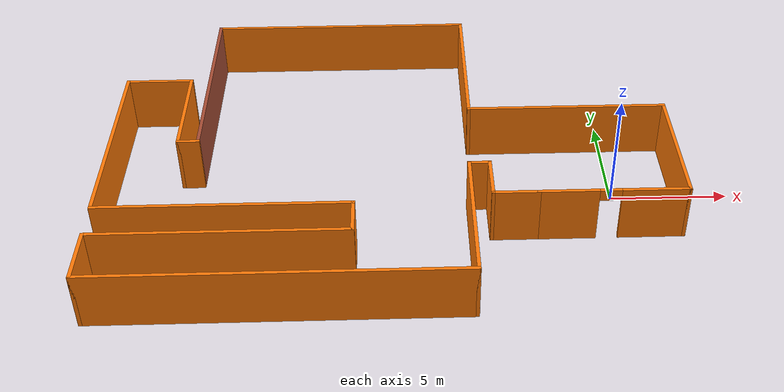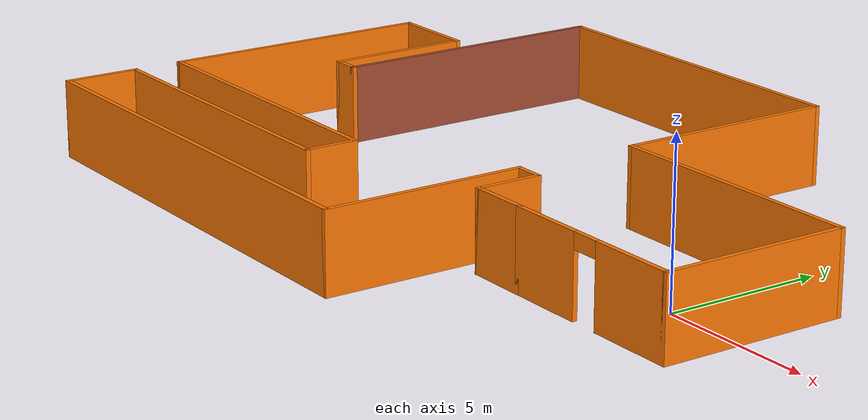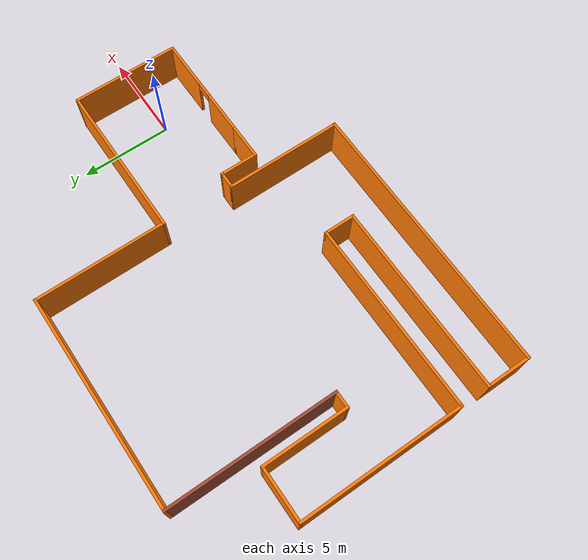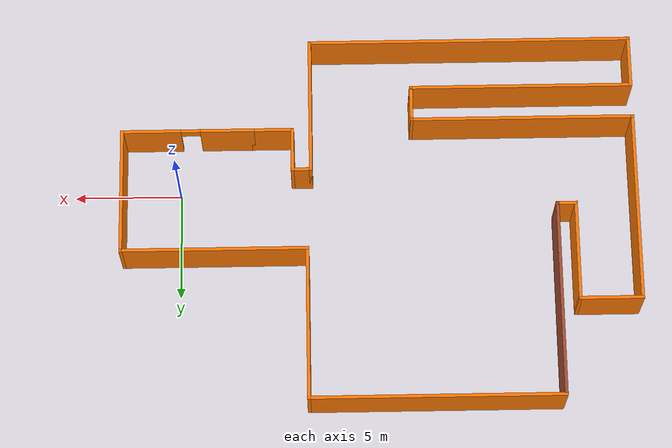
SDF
<?xml version='1.0'?>
<sdf version='1.7'>
  <model name='Building'>
    <pose>-9.3 1.86 0 0 -0 0</pose>
    <link name='Wall_0'>
      <pose>8.9 -4.273 0 0 -0 0</pose>
      <visual name='Wall_0_Visual_0'>
        <pose>-1.8625 0 1.25 0 -0 0</pose>
        <geometry>
          <box>
            <size>2.525 0.15 2.5</size>
          </box>
        </geometry>
        <material>
          <script>
            <uri>file://media/materials/scripts/gazebo.material</uri>
            <name>Gazebo/Grey</name>
          </script>
          <ambient>0.996078 0.47451 0.0196078 1</ambient>
        </material>
        <meta>
          <layer>0</layer>
        </meta>
      </visual>
      <collision name='Wall_0_Collision_0'>
        <geometry>
          <box>
            <size>2.525 0.15 2.5</size>
          </box>
        </geometry>
        <pose>-1.8625 0 1.25 0 -0 0</pose>
      </collision>
      <visual name='Wall_0_Visual_1'>
        <pose>1.7125 0 1.25 0 -0 0</pose>
        <geometry>
          <box>
            <size>2.825 0.15 2.5</size>
          </box>
        </geometry>
        <material>
          <script>
            <uri>file://media/materials/scripts/gazebo.material</uri>
            <name>Gazebo/Grey</name>
          </script>
          <ambient>0.996078 0.47451 0.0196078 1</ambient>
        </material>
        <meta>
          <layer>0</layer>
        </meta>
      </visual>
      <collision name='Wall_0_Collision_1'>
        <geometry>
          <box>
            <size>2.825 0.15 2.5</size>
          </box>
        </geometry>
        <pose>1.7125 0 1.25 0 -0 0</pose>
      </collision>
      <visual name='Wall_0_Visual_2'>
        <pose>-0.15 0 2.25 0 -0 0</pose>
        <geometry>
          <box>
            <size>0.9 0.15 0.5</size>
          </box>
        </geometry>
        <material>
          <script>
            <uri>file://media/materials/scripts/gazebo.material</uri>
            <name>Gazebo/Grey</name>
          </script>
          <ambient>0.996078 0.47451 0.0196078 1</ambient>
        </material>
        <meta>
          <layer>0</layer>
        </meta>
      </visual>
      <collision name='Wall_0_Collision_2'>
        <geometry>
          <box>
            <size>0.9 0.15 0.5</size>
          </box>
        </geometry>
        <pose>-0.15 0 2.25 0 -0 0</pose>
      </collision>
    </link>
    <link name='Wall_12'>
      <collision name='Wall_12_Collision'>
        <geometry>
          <box>
            <size>9 0.15 2.5</size>
          </box>
        </geometry>
        <pose>0 0 1.25 0 -0 0</pose>
      </collision>
      <visual name='Wall_12_Visual'>
        <pose>0 0 1.25 0 -0 0</pose>
        <geometry>
          <box>
            <size>9 0.15 2.5</size>
          </box>
        </geometry>
        <material>
          <script>
            <uri>file://media/materials/scripts/gazebo.material</uri>
            <name>Gazebo/Grey</name>
          </script>
          <ambient>0.996078 0.47451 0.0196078 1</ambient>
        </material>
        <meta>
          <layer>0</layer>
        </meta>
      </visual>
      <pose>-11.95 -0.275 0 0 -0 -1.5708</pose>
    </link>
    <link name='Wall_13'>
      <collision name='Wall_13_Collision'>
        <geometry>
          <box>
            <size>10.5 0.15 2.5</size>
          </box>
        </geometry>
        <pose>0 0 1.25 0 -0 0</pose>
      </collision>
      <visual name='Wall_13_Visual'>
        <pose>0 0 1.25 0 -0 0</pose>
        <geometry>
          <box>
            <size>10.5 0.15 2.5</size>
          </box>
        </geometry>
        <material>
          <script>
            <uri>file://media/materials/scripts/gazebo.material</uri>
            <name>Gazebo/Grey</name>
          </script>
          <ambient>0.996078 0.47451 0.0196078 1</ambient>
        </material>
        <meta>
          <layer>0</layer>
        </meta>
      </visual>
      <pose>-6.775 -4.7 0 0 -0 0</pose>
    </link>
    <link name='Wall_14'>
      <collision name='Wall_14_Collision'>
        <geometry>
          <box>
            <size>1.75 0.15 2.5</size>
          </box>
        </geometry>
        <pose>0 0 1.25 0 -0 0</pose>
      </collision>
      <visual name='Wall_14_Visual'>
        <pose>0 0 1.25 0 -0 0</pose>
        <geometry>
          <box>
            <size>1.75 0.15 2.5</size>
          </box>
        </geometry>
        <material>
          <script>
            <uri>file://media/materials/scripts/gazebo.material</uri>
            <name>Gazebo/Grey</name>
          </script>
          <ambient>0.996078 0.47451 0.0196078 1</ambient>
        </material>
        <meta>
          <layer>0</layer>
        </meta>
      </visual>
      <pose>-1.6 -5.5 0 0 -0 -1.5708</pose>
    </link>
    <link name='Wall_15'>
      <collision name='Wall_15_Collision'>
        <geometry>
          <box>
            <size>10.5 0.15 2.5</size>
          </box>
        </geometry>
        <pose>0 0 1.25 0 -0 0</pose>
      </collision>
      <visual name='Wall_15_Visual'>
        <pose>0 0 1.25 0 -0 0</pose>
        <geometry>
          <box>
            <size>10.5 0.15 2.5</size>
          </box>
        </geometry>
        <material>
          <script>
            <uri>file://media/materials/scripts/gazebo.material</uri>
            <name>Gazebo/Grey</name>
          </script>
          <ambient>0.996078 0.47451 0.0196078 1</ambient>
        </material>
        <meta>
          <layer>0</layer>
        </meta>
      </visual>
      <pose>-6.775 -6.3 0 0 -0 3.14159</pose>
    </link>
    <link name='Wall_16'>
      <collision name='Wall_16_Collision'>
        <geometry>
          <box>
            <size>2.5 0.15 2.5</size>
          </box>
        </geometry>
        <pose>0 0 1.25 0 -0 0</pose>
      </collision>
      <visual name='Wall_16_Visual'>
        <pose>0 0 1.25 0 -0 0</pose>
        <geometry>
          <box>
            <size>2.5 0.15 2.5</size>
          </box>
        </geometry>
        <material>
          <script>
            <uri>file://media/materials/scripts/gazebo.material</uri>
            <name>Gazebo/Grey</name>
          </script>
          <ambient>0.996078 0.47451 0.0196078 1</ambient>
        </material>
        <meta>
          <layer>0</layer>
        </meta>
      </visual>
      <pose>-11.95 -7.475 0 0 -0 -1.5708</pose>
    </link>
    <link name='Wall_17'>
      <collision name='Wall_17_Collision'>
        <geometry>
          <box>
            <size>15.25 0.15 2.5</size>
          </box>
        </geometry>
        <pose>0 0 1.25 0 -0 0</pose>
      </collision>
      <visual name='Wall_17_Visual'>
        <pose>0 0 1.25 0 -0 0</pose>
        <geometry>
          <box>
            <size>15.25 0.15 2.5</size>
          </box>
        </geometry>
        <material>
          <script>
            <uri>file://media/materials/scripts/gazebo.material</uri>
            <name>Gazebo/Grey</name>
          </script>
          <ambient>0.996078 0.47451 0.0196078 1</ambient>
        </material>
        <meta>
          <layer>0</layer>
        </meta>
      </visual>
      <pose>-4.4 -8.65 0 0 -0 0</pose>
    </link>
    <link name='Wall_18'>
      <collision name='Wall_18_Collision'>
        <geometry>
          <box>
            <size>6.5 0.15 2.5</size>
          </box>
        </geometry>
        <pose>0 0 1.25 0 -0 0</pose>
      </collision>
      <visual name='Wall_18_Visual'>
        <pose>0 0 1.25 0 -0 0</pose>
        <geometry>
          <box>
            <size>6.5 0.15 2.5</size>
          </box>
        </geometry>
        <material>
          <script>
            <uri>file://media/materials/scripts/gazebo.material</uri>
            <name>Gazebo/Grey</name>
          </script>
          <ambient>0.996078 0.47451 0.0196078 1</ambient>
        </material>
        <meta>
          <layer>0</layer>
        </meta>
      </visual>
      <pose>3.15 -5.475 0 0 -0 1.5708</pose>
    </link>
    <link name='Wall_19'>
      <collision name='Wall_19_Collision'>
        <geometry>
          <box>
            <size>1 0.15 2.5</size>
          </box>
        </geometry>
        <pose>0 0 1.25 0 -0 0</pose>
      </collision>
      <visual name='Wall_19_Visual'>
        <pose>0 0 1.25 0 -0 0</pose>
        <geometry>
          <box>
            <size>1 0.15 2.5</size>
          </box>
        </geometry>
        <material>
          <script>
            <uri>file://media/materials/scripts/gazebo.material</uri>
            <name>Gazebo/Grey</name>
          </script>
          <ambient>0.996078 0.47451 0.0196078 1</ambient>
        </material>
        <meta>
          <layer>0</layer>
        </meta>
      </visual>
      <pose>3.575 -2.3 0 0 -0 0</pose>
    </link>
    <link name='Wall_2'>
      <collision name='Wall_2_Collision'>
        <geometry>
          <box>
            <size>5.973 0.15 2.5</size>
          </box>
        </geometry>
        <pose>0 0 1.25 0 -0 0</pose>
      </collision>
      <visual name='Wall_2_Visual'>
        <pose>0 0 1.25 0 -0 0</pose>
        <geometry>
          <box>
            <size>5.973 0.15 2.5</size>
          </box>
        </geometry>
        <material>
          <script>
            <uri>file://media/materials/scripts/gazebo.material</uri>
            <name>Gazebo/Grey</name>
          </script>
          <ambient>0.996078 0.47451 0.0196078 1</ambient>
        </material>
        <meta>
          <layer>0</layer>
        </meta>
      </visual>
      <pose>11.95 -1.3615 0 0 -0 1.5708</pose>
    </link>
    <link name='Wall_20'>
      <collision name='Wall_20_Collision'>
        <geometry>
          <box>
            <size>2.123 0.15 2.5</size>
          </box>
        </geometry>
        <pose>0 0 1.25 0 -0 0</pose>
      </collision>
      <visual name='Wall_20_Visual'>
        <pose>0 0 1.25 0 -0 0</pose>
        <geometry>
          <box>
            <size>2.123 0.15 2.5</size>
          </box>
        </geometry>
        <material>
          <script>
            <uri>file://media/materials/scripts/gazebo.material</uri>
            <name>Gazebo/Grey</name>
          </script>
          <ambient>0.996078 0.47451 0.0196078 1</ambient>
        </material>
        <meta>
          <layer>0</layer>
        </meta>
      </visual>
      <pose>4 -3.2865 0 0 -0 -1.5708</pose>
    </link>
    <link name='Wall_21'>
      <collision name='Wall_21_Collision'>
        <geometry>
          <box>
            <size>2 0.15 2.5</size>
          </box>
        </geometry>
        <pose>0 0 1.25 0 -0 0</pose>
      </collision>
      <visual name='Wall_21_Visual'>
        <pose>0 0 1.25 0 -0 0</pose>
        <geometry>
          <box>
            <size>2 0.15 2.5</size>
          </box>
        </geometry>
        <material>
          <script>
            <uri>file://media/materials/scripts/gazebo.material</uri>
            <name>Gazebo/Grey</name>
          </script>
          <ambient>0.996078 0.47451 0.0196078 1</ambient>
        </material>
        <meta>
          <layer>0</layer>
        </meta>
      </visual>
      <pose>4.925 -4.273 0 0 -0 0</pose>
    </link>
    <link name='Wall_3'>
      <collision name='Wall_3_Collision'>
        <geometry>
          <box>
            <size>8.75 0.15 2.5</size>
          </box>
        </geometry>
        <pose>0 0 1.25 0 -0 0</pose>
      </collision>
      <visual name='Wall_3_Visual'>
        <pose>0 0 1.25 0 -0 0</pose>
        <geometry>
          <box>
            <size>8.75 0.15 2.5</size>
          </box>
        </geometry>
        <material>
          <script>
            <uri>file://media/materials/scripts/gazebo.material</uri>
            <name>Gazebo/Grey</name>
          </script>
          <ambient>0.996078 0.47451 0.0196078 1</ambient>
        </material>
        <meta>
          <layer>0</layer>
        </meta>
      </visual>
      <pose>7.65 1.55 0 0 -0 3.14159</pose>
    </link>
    <link name='Wall_4'>
      <collision name='Wall_4_Collision'>
        <geometry>
          <box>
            <size>7.25 0.15 2.5</size>
          </box>
        </geometry>
        <pose>0 0 1.25 0 -0 0</pose>
      </collision>
      <visual name='Wall_4_Visual'>
        <pose>0 0 1.25 0 -0 0</pose>
        <geometry>
          <box>
            <size>7.25 0.15 2.5</size>
          </box>
        </geometry>
        <material>
          <script>
            <uri>file://media/materials/scripts/gazebo.material</uri>
            <name>Gazebo/Grey</name>
          </script>
          <ambient>0.996078 0.47451 0.0196078 1</ambient>
        </material>
        <meta>
          <layer>0</layer>
        </meta>
      </visual>
      <pose>3.35 5.1 0 0 -0 1.5708</pose>
    </link>
    <link name='Wall_5'>
      <collision name='Wall_5_Collision'>
        <geometry>
          <box>
            <size>11.75 0.15 2.5</size>
          </box>
        </geometry>
        <pose>0 0 1.25 0 -0 0</pose>
      </collision>
      <visual name='Wall_5_Visual'>
        <pose>0 0 1.25 0 -0 0</pose>
        <geometry>
          <box>
            <size>11.75 0.15 2.5</size>
          </box>
        </geometry>
        <material>
          <script>
            <uri>file://media/materials/scripts/gazebo.material</uri>
            <name>Gazebo/Grey</name>
          </script>
          <ambient>0.996078 0.47451 0.0196078 1</ambient>
        </material>
        <meta>
          <layer>0</layer>
        </meta>
      </visual>
      <pose>-2.45 8.65 0 0 -0 3.14159</pose>
    </link>
    <link name='Wall_6'>
      <collision name='Wall_6_Collision'>
        <geometry>
          <box>
            <size>9.25 0.15 2.5</size>
          </box>
        </geometry>
        <pose>0 0 1.25 0 -0 0</pose>
      </collision>
      <visual name='Wall_6_Visual'>
        <pose>0 0 1.25 0 -0 0</pose>
        <geometry>
          <box>
            <size>9.25 0.15 2.5</size>
          </box>
        </geometry>
        <material>
          <script>
            <uri>file://media/materials/scripts/gazebo.material</uri>
            <name>Gazebo/Bricks</name>
          </script>
          <ambient>0.996078 0.47451 0.0196078 1</ambient>
        </material>
        <meta>
          <layer>0</layer>
        </meta>
      </visual>
      <pose>-8.25 4.1 0 0 -0 -1.5708</pose>
    </link>
    <link name='Wall_7'>
      <collision name='Wall_7_Collision'>
        <geometry>
          <box>
            <size>1 0.15 2.5</size>
          </box>
        </geometry>
        <pose>0 0 1.25 0 -0 0</pose>
      </collision>
      <visual name='Wall_7_Visual'>
        <pose>0 0 1.25 0 -0 0</pose>
        <geometry>
          <box>
            <size>1 0.15 2.5</size>
          </box>
        </geometry>
        <material>
          <script>
            <uri>file://media/materials/scripts/gazebo.material</uri>
            <name>Gazebo/Grey</name>
          </script>
          <ambient>0.996078 0.47451 0.0196078 1</ambient>
        </material>
        <meta>
          <layer>0</layer>
        </meta>
      </visual>
      <pose>-8.675 -0.45 0 0 -0 3.14159</pose>
    </link>
    <link name='Wall_8'>
      <collision name='Wall_8_Collision'>
        <geometry>
          <box>
            <size>4.75 0.15 2.5</size>
          </box>
        </geometry>
        <pose>0 0 1.25 0 -0 0</pose>
      </collision>
      <visual name='Wall_8_Visual'>
        <pose>0 0 1.25 0 -0 0</pose>
        <geometry>
          <box>
            <size>4.75 0.15 2.5</size>
          </box>
        </geometry>
        <material>
          <script>
            <uri>file://media/materials/scripts/gazebo.material</uri>
            <name>Gazebo/Grey</name>
          </script>
          <ambient>0.996078 0.47451 0.0196078 1</ambient>
        </material>
        <meta>
          <layer>0</layer>
        </meta>
      </visual>
      <pose>-9.1 1.85 0 0 -0 1.5708</pose>
    </link>
    <link name='Wall_9'>
      <collision name='Wall_9_Collision'>
        <geometry>
          <box>
            <size>3 0.15 2.5</size>
          </box>
        </geometry>
        <pose>0 0 1.25 0 -0 0</pose>
      </collision>
      <visual name='Wall_9_Visual'>
        <pose>0 0 1.25 0 -0 0</pose>
        <geometry>
          <box>
            <size>3 0.15 2.5</size>
          </box>
        </geometry>
        <material>
          <script>
            <uri>file://media/materials/scripts/gazebo.material</uri>
            <name>Gazebo/Grey</name>
          </script>
          <ambient>0.996078 0.47451 0.0196078 1</ambient>
        </material>
        <meta>
          <layer>0</layer>
        </meta>
      </visual>
      <pose>-10.525 4.15 0 0 -0 3.14159</pose>
    </link>
    <static>1</static>
  </model>
</sdf>
